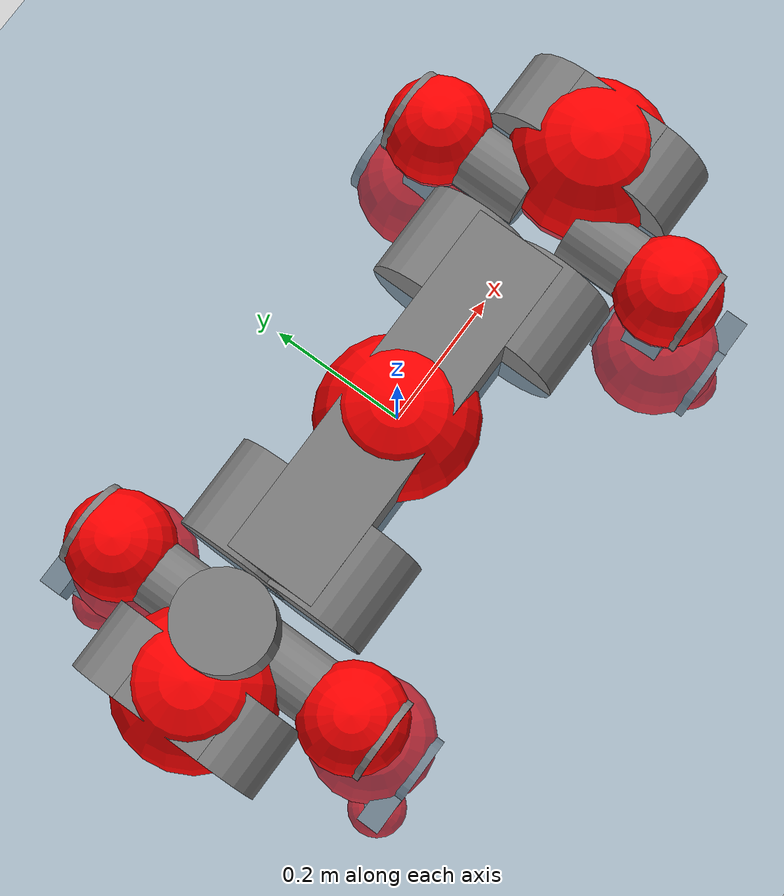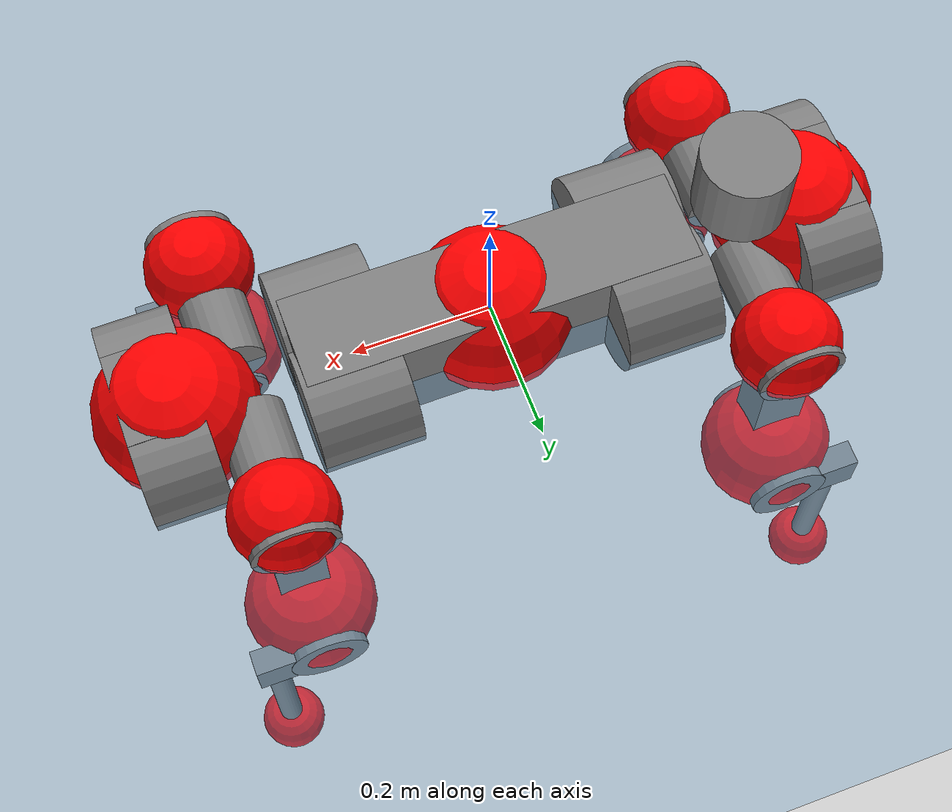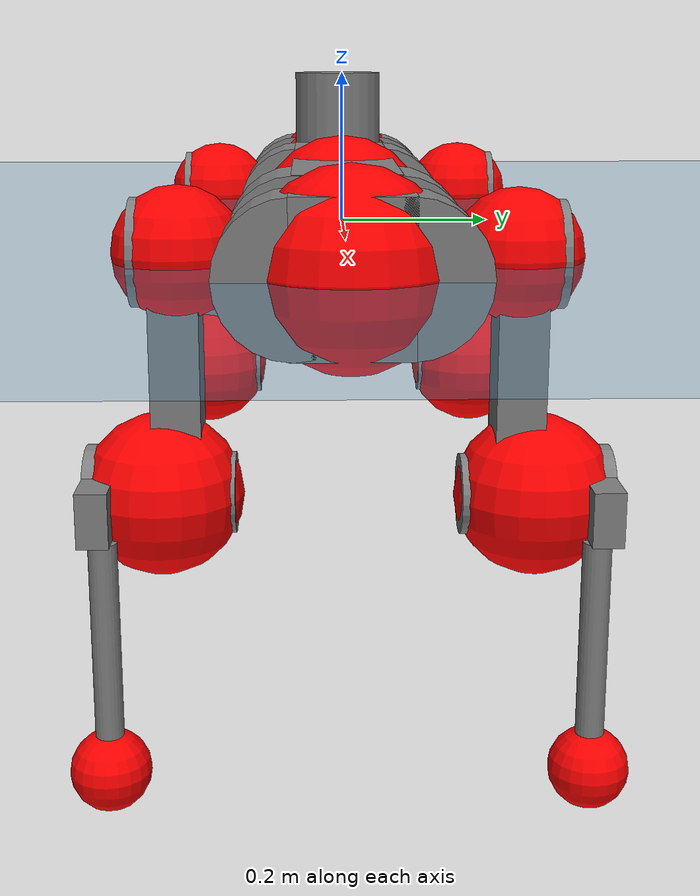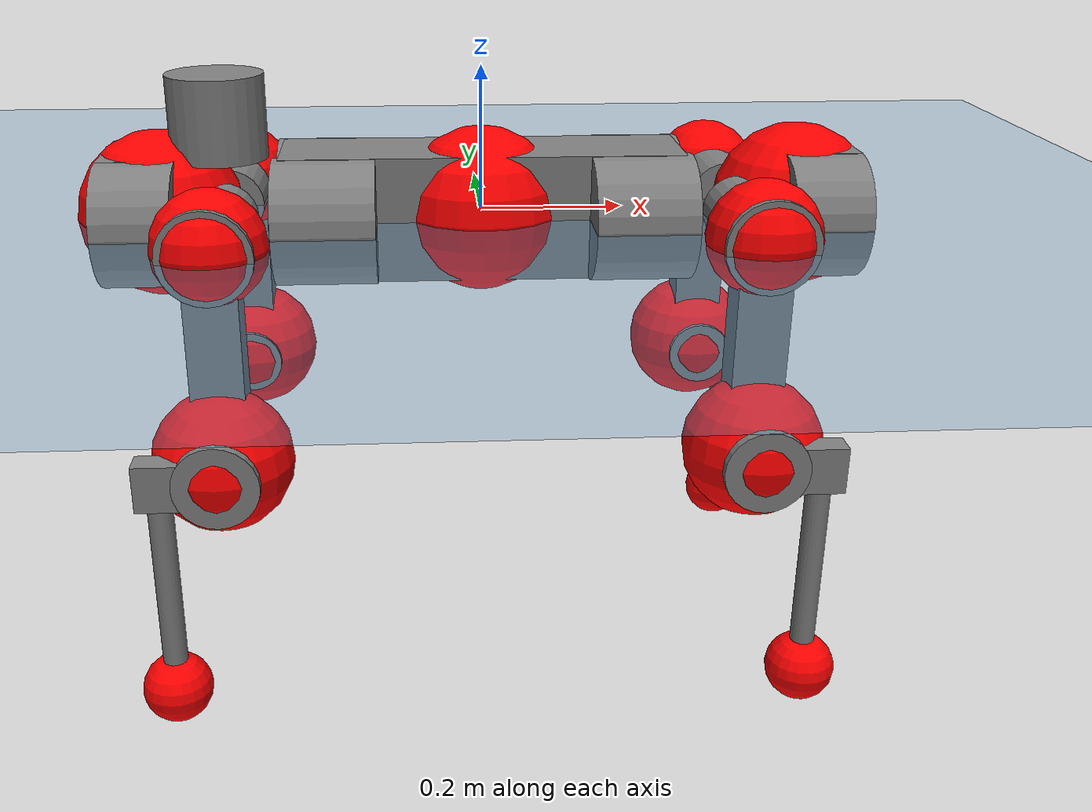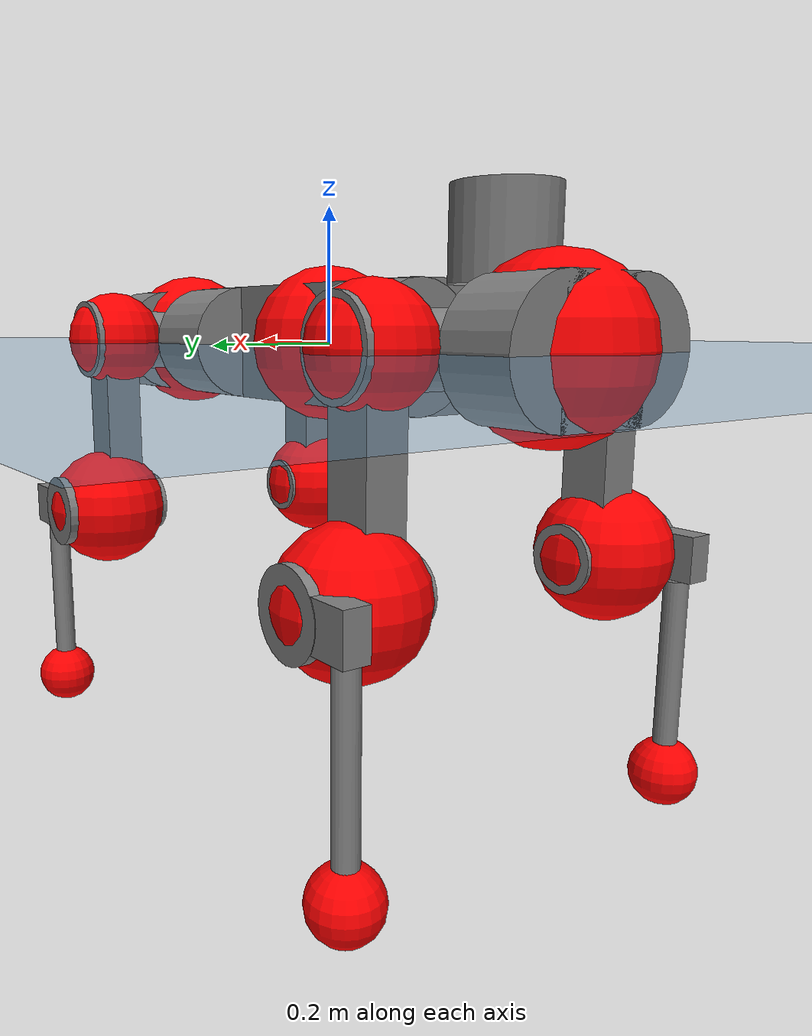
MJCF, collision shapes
<mujoco model="anymal_c">
  <compiler angle="radian" assetdir="assets" balanceinertia="true" inertiafromgeom="false"/>

  <option timestep="0.005" density="1.2" viscosity="2e-05"/>

  <size nkey="1"/>

  <visual>
    <quality shadowsize="8192"/>
    <map shadowclip="0.5"/>
  </visual>

  <default>
    <default class="/">
      <material specular="0" shininess="0.25"/>
      <geom contype="0" conaffinity="0" group="1" solref="-1000 -80"/>
      <site size="0.01 0.005 0.005" group="5"/>
      <general forcelimited="true" forcerange="-80 80" biastype="affine" gainprm="80" biasprm="0 -80 -2"/>
      <default class="anymal_c">
        <joint armature="0.01" damping="0.01" frictionloss="0.1"/>
        <default class="visual">
          <geom type="mesh" group="2"/>
          <default class="visual_zflip"/>
        </default>
        <default class="collision">
          <geom type="cylinder" group="3"/>
          <default class="foot">
            <geom size="0.03 0 0" type="sphere" condim="6" priority="1" friction="0.8 0.02 0.01" solimp="0.015 1 0.03"/>
          </default>
        </default>
      </default>
      <default class="reward_collision_sphere">
        <geom group="5" rgba="1 0 0 1"/>
      </default>
    </default>
  </default>

  <asset>
    <texture type="skybox" colorspace="auto" name="//unnamed_texture_0" builtin="gradient" rgb1="0.95 0.95 0.95" rgb2="0.95 0.95 0.95" width="100" height="600"/>
    <texture type="2d" colorspace="auto" name="texplane" builtin="checker" rgb1="0.345 0.575 0.748" rgb2="0.345 0.575 0.748" markrgb="1 1 1" width="512" height="512"/>
    <texture type="2d" colorspace="linear" name="base" file="base.png"/>
    <texture type="2d" colorspace="linear" name="top_shell" file="top_shell.png"/>
    <texture type="2d" colorspace="linear" name="bottom_shell" file="bottom_shell.png"/>
    <texture type="2d" colorspace="linear" name="remote" file="remote.png"/>
    <texture type="2d" colorspace="linear" name="hatch" file="hatch.png"/>
    <texture type="2d" colorspace="linear" name="handle" file="handle.png"/>
    <texture type="2d" colorspace="linear" name="face" file="face.png"/>
    <texture type="2d" colorspace="linear" name="battery" file="battery.png"/>
    <texture type="2d" colorspace="linear" name="lidar_cage" file="lidar_cage.png"/>
    <texture type="2d" colorspace="linear" name="depth_camera" file="depth_camera.png"/>
    <texture type="2d" colorspace="linear" name="wide_angle_camera" file="wide_angle_camera.png"/>
    <texture type="2d" colorspace="linear" name="lidar" file="lidar.png"/>
    <texture type="2d" colorspace="linear" name="drive" file="drive.png"/>
    <texture type="2d" colorspace="linear" name="hip_l" file="hip_l.png"/>
    <texture type="2d" colorspace="linear" name="shank_l" file="shank_l.png"/>
    <texture type="2d" colorspace="linear" name="foot" file="foot.png"/>
    <texture type="2d" colorspace="linear" name="thigh" file="thigh.png"/>
    <texture type="2d" colorspace="linear" name="shank_r" file="shank_r.png"/>
    <texture type="2d" colorspace="linear" name="hip_r" file="hip_r.png"/>
    <material name="MatPlane" class="/" texture="texplane" texuniform="true" texrepeat="2 2" specular="0.9" shininess="0.5"/>
    <material name="black_plastic" class="/" rgba="0.007 0.007 0.007 1"/>
    <material name="green" class="/" rgba="0.052 0.178 0.033 1"/>
    <material name="red" class="/" rgba="0.178 0.006 0.005 1"/>
    <material name="yellow" class="/" rgba="0.178 0.119 0.006 1"/>
    <material name="lwl" class="/" rgba="0.8 0.8 0.8 1"/>
    <material name="base" class="/" texture="base"/>
    <material name="top_shell" class="/" texture="top_shell"/>
    <material name="bottom_shell" class="/" texture="bottom_shell"/>
    <material name="hip_l" class="/" texture="hip_l"/>
    <material name="thigh" class="/" texture="thigh"/>
    <material name="shank_l" class="/" texture="shank_l"/>
    <material name="foot" class="/" texture="foot"/>
    <material name="hip_r" class="/" texture="hip_r"/>
    <material name="shank" class="/" texture="shank_r"/>
    <material name="hatch" class="/" texture="hatch"/>
    <material name="remote" class="/" texture="remote"/>
    <material name="handle" class="/" texture="handle"/>
    <material name="face" class="/" texture="face"/>
    <material name="depth_camera" class="/" texture="depth_camera"/>
    <material name="wide_angle_camera" class="/" texture="wide_angle_camera"/>
    <material name="battery" class="/" texture="battery"/>
    <material name="lidar_cage" class="/" texture="lidar_cage"/>
    <material name="lidar" class="/" texture="lidar"/>
    <material name="drive" class="/" texture="drive"/>
    <mesh name="base_0" class="/" file="base_0.obj"/>
    <mesh name="base_1" class="/" file="base_1.obj"/>
    <mesh name="base_2" class="/" file="base_2.obj"/>
    <mesh name="base_3" class="/" file="base_3.obj"/>
    <mesh name="base_4" class="/" file="base_4.obj"/>
    <mesh name="base_5" class="/" file="base_5.obj"/>
    <mesh name="top_shell" class="/" file="top_shell.obj"/>
    <mesh name="bottom_shell" class="/" file="bottom_shell.obj"/>
    <mesh name="remote" class="/" file="remote.obj"/>
    <mesh name="handle" class="/" file="handle.obj"/>
    <mesh name="face" class="/" file="face.obj"/>
    <mesh name="wide_angle_camera" class="/" file="wide_angle_camera.obj"/>
    <mesh name="depth_camera" class="/" file="depth_camera.obj"/>
    <mesh name="battery" class="/" file="battery.obj"/>
    <mesh name="lidar_cage" class="/" file="lidar_cage.obj"/>
    <mesh name="lidar" class="/" file="lidar.obj"/>
    <mesh name="drive" class="/" file="drive.obj"/>
    <mesh name="hip_l" class="/" file="hip_l.obj"/>
    <mesh name="thigh" class="/" file="thigh.obj"/>
    <mesh name="shank_l" class="/" file="shank_l.obj"/>
    <mesh name="foot" class="/" file="foot.obj"/>
    <mesh name="hip_r" class="/" file="hip_r.obj"/>
    <mesh name="hatch" class="/" file="hatch.obj"/>
    <mesh name="shank_r" class="/" file="shank_r.obj"/>
  </asset>

  <worldbody>
    <geom name="floor" class="/" size="100 100 0.125" type="plane" group="0" material="MatPlane"/>
    <light name="toplight_shadow" class="/" pos="0 0 5" dir="0.0990148 0.0990148 -0.990148" type="directional" ambient="0.04 0.04 0.04" diffuse="0.55 0.55 0.55" specular="0.12 0.12 0.12"/>
    <light name="toplight_fill" class="/" pos="0 0 5" dir="0.0990148 0.0990148 -0.990148" type="directional" castshadow="false" ambient="0.04 0.04 0.04" diffuse="0.3 0.3 0.3" specular="0.08 0.08 0.08"/>
    <body name="trunk" childclass="anymal_c" pos="4.65187e-05 0.000510871 0.00091979" quat="1 3.51677e-06 0.000228842 5.57397e-05">
      <inertial pos="0.00317986 -0.000881363 0.0495901" quat="0.498111 0.502725 0.499029 0.500123" mass="17.1933" diaginertia="0.654376 0.341556 0.231705"/>
      <joint name="//unnamed_joint_0" type="free" armature="0" damping="0" frictionloss="0"/>
      <geom name="//unnamed_geom_1" class="visual" material="green" mesh="base_0"/>
      <geom name="//unnamed_geom_2" class="visual" material="yellow" mesh="base_1"/>
      <geom name="//unnamed_geom_3" class="visual" material="red" mesh="base_2"/>
      <geom name="//unnamed_geom_4" class="visual" material="black_plastic" mesh="base_3"/>
      <geom name="//unnamed_geom_5" class="visual" material="lwl" mesh="base_4"/>
      <geom name="//unnamed_geom_6" class="visual" material="base" mesh="base_5"/>
      <geom name="trunk_1" class="collision" size="0.279272 0.0674105 0.0866707" type="box"/>
      <geom name="trunk_2" class="collision" size="0.0866707 0.069818" pos="0.217255 0.0618536 0" quat="0.707107 0 0.707107 0"/>
      <geom name="trunk_3" class="collision" size="0.0866707 0.069818" pos="-0.217255 0.0618536 0" quat="0.707107 0 0.707107 0"/>
      <geom name="trunk_4" class="collision" size="0.0866707 0.069818" pos="0.217255 -0.0618536 0" quat="0.707107 0 0.707107 0"/>
      <geom name="trunk_5" class="collision" size="0.0866707 0.069818" pos="-0.217255 -0.0618536 0" quat="0.707107 0 0.707107 0"/>
      <geom name="//unnamed_geom_12" class="visual" material="top_shell" mesh="top_shell"/>
      <geom name="//unnamed_geom_13" class="visual" material="bottom_shell" mesh="bottom_shell"/>
      <geom name="//unnamed_geom_14" class="visual" material="remote" mesh="remote"/>
      <geom name="//unnamed_geom_15" class="visual" material="handle" mesh="handle"/>
      <geom name="//unnamed_geom_16" class="visual" pos="0.414032 0 0" quat="1 0 0 0" material="face" mesh="face"/>
      <geom name="trunk_6" class="collision" size="0.0529654 0.0674105 0.0866707" pos="0.46897 0 0" type="box"/>
      <geom name="//unnamed_geom_18" class="collision" size="0.0866707 0.0529654" pos="0.46897 0.0618536 0" quat="0.707107 0 0.707107 0"/>
      <geom name="//unnamed_geom_19" class="collision" size="0.0866707 0.0529654" pos="0.46897 -0.0618536 0" quat="0.707107 0 0.707107 0"/>
      <geom name="//unnamed_geom_20" class="visual" pos="0.46113 0 -0.0294488" quat="0.965926 0 0.258819 0" material="depth_camera" mesh="depth_camera"/>
      <geom name="//unnamed_geom_21" class="visual" pos="0.512421 0 0.0150677" material="wide_angle_camera" mesh="wide_angle_camera"/>
      <geom name="//unnamed_geom_22" class="visual_zflip" pos="-0.414032 0 0" quat="0 0 0 1" material="face" mesh="face"/>
      <geom name="trunk_7" class="collision" size="0.0529654 0.0674105 0.0866707" pos="-0.46897 0 0" quat="0 0 0 1" type="box"/>
      <geom name="//unnamed_geom_24" class="collision" size="0.0866707 0.0529654" pos="-0.46897 -0.0618536 0" quat="0 -0.707107 0 0.707107"/>
      <geom name="//unnamed_geom_25" class="collision" size="0.0866707 0.0529654" pos="-0.46897 0.0618536 0" quat="0 -0.707107 0 0.707107"/>
      <geom name="//unnamed_geom_26" class="visual" pos="-0.46113 0 -0.0294488" quat="0 -0.258819 0 0.965926" material="depth_camera" mesh="depth_camera"/>
      <geom name="//unnamed_geom_27" class="visual_zflip" pos="-0.512421 0 0.0150677" quat="0 0 0 1" material="wide_angle_camera" mesh="wide_angle_camera"/>
      <geom name="//unnamed_geom_28" class="visual" material="battery" mesh="battery"/>
      <geom name="//unnamed_geom_29" class="visual" pos="0 0.0660498 0.0291814" quat="0.683013 -0.183013 0.183013 0.683013" material="depth_camera" mesh="depth_camera"/>
      <geom name="//unnamed_geom_30" class="visual" pos="0 -0.0660498 0.0291814" quat="0.683013 0.183013 0.183013 -0.683013" material="depth_camera" mesh="depth_camera"/>
      <geom name="//unnamed_geom_31" class="visual" pos="-0.363589 0 0.0739797" quat="1 0 0 0" material="lidar_cage" mesh="lidar_cage"/>
      <geom name="trunk_8" class="collision" size="0.0674105 0.0577804" pos="-0.363589 0 0.134371"/>
      <geom name="//unnamed_geom_33" class="visual" pos="-0.363589 -4.52783e-05 0.143128" quat="0.707107 0 0 -0.707107" material="lidar" mesh="lidar"/>
      <geom name="//unnamed_geom_34" class="visual" pos="0.299562 0.0919404 -2.12012e-09" quat="0.258819 0.965926 0 0" material="drive" mesh="drive"/>
      <geom name="//unnamed_geom_35" class="visual" pos="0.299562 -0.0919404 2.12012e-09" quat="0.258819 -0.965926 0 0" material="drive" mesh="drive"/>
      <geom name="//unnamed_geom_36" class="visual" pos="-0.299562 0.0919404 2.12012e-09" quat="0 0 0.965926 -0.258819" material="drive" mesh="drive"/>
      <geom name="//unnamed_geom_37" class="visual" pos="-0.299562 -0.0919404 -2.12012e-09" quat="0 0 -0.965926 -0.258819" material="drive" mesh="drive"/>
      <geom name="//unnamed_geom_38" class="visual" pos="0.115869 0 0.0734765" quat="1 0 0 0" material="hatch" mesh="hatch"/>
      <geom name="//unnamed_geom_39" class="reward_collision_sphere" size="0.115561"/>
      <geom name="//unnamed_geom_40" class="reward_collision_sphere" size="0.115561" pos="0.449492 0 0"/>
      <geom name="//unnamed_geom_41" class="reward_collision_sphere" size="0.115561" pos="-0.449492 0 0"/>
      <site name="imu" pos="0.244581 -0.00261102 0.0508794" size="0.00963007"/>
      <camera name="track" pos="0 -1.76725 0" quat="0.707107 0.707107 0 0" mode="trackcom"/>
      <camera name="ego_camera" pos="0.449492 0 -0.0402611" quat="-0.5 -0.5 0.5 0.5"/>
      <body name="LF_HIP" pos="0.299717 0.0917819 0.00081407" quat="0.258836 0.965921 -0.000472268 0.00081627">
        <inertial pos="0.0575565 -0.0130076 -0.00783714" quat="-0.127804 0.709938 -0.135308 0.679225" mass="2.52642" diaginertia="0.00592585 0.00270457 0.00342247"/>
        <joint name="LF_HAA" pos="0 0 0" axis="1 0.000727597 0.000116833" range="-0.692095 0.485719" armature="0.00974273" damping="0.0125043" frictionloss="0.0939931"/>
        <geom name="//unnamed_geom_42" class="visual" pos="0 -0.000124717 2.04846e-05" quat="0.258819 -0.965926 0 0" material="hip_l" mesh="hip_l"/>
        <geom name="//unnamed_geom_43" class="visual" pos="0.0598324 -0.071026 -0.0419159" quat="0.183013 -0.683013 0.683013 0.183013" material="drive" mesh="drive"/>
        <geom name="//unnamed_geom_44" class="collision" size="0.0481504 0.0674105" pos="0.0598324 -0.010568 -0.00695007" quat="-0.353553 -0.612372 0.612372 -0.353553"/>
        <body name="LF_THIGH" pos="0.0602598 -0.0647846 -0.0406069" quat="0.183003 -0.683058 0.682985 0.182957">
          <inertial pos="0.0312774 -0.00131867 -0.249244" quat="0.993284 -0.00345925 -0.0788464 0.084607" mass="2.72617" diaginertia="0.0301738 0.0162405 0.00432908"/>
          <joint name="LF_HFE" pos="0 0 0" axis="0.999999 0.00103467 0.000474785" range="-3.1463 3.17456" armature="0.00999297" damping="0" frictionloss="0.0963622"/>
          <geom name="//unnamed_geom_45" class="visual" pos="0.00229301 3.61324e-06 0" quat="0.707107 0 0 -0.707107" material="thigh" mesh="thigh"/>
          <geom name="//unnamed_geom_46" class="collision" size="0.0625955 0.0385203" pos="0.0399549 0 0" quat="0.5 0.5 -0.5 -0.5"/>
          <geom name="//unnamed_geom_47" class="collision" size="0.0361128 0.0288902 0.136086" pos="0.0299662 0 -0.142236" quat="0.707107 0 0 -0.707107" type="box"/>
          <geom name="//unnamed_geom_48" class="visual" pos="0.100187 0 -0.28686" quat="1 0 0 0" material="drive" mesh="drive"/>
          <geom name="//unnamed_geom_49" class="collision" size="0.0481504 0.0674105" pos="0.0302658 0 -0.28686" quat="0.707107 0 0.707107 0"/>
          <geom name="//unnamed_geom_50" class="reward_collision_sphere" size="0.0770406" pos="0.0249718 0 0"/>
          <body name="LF_SHANK" pos="0.102248 0.00131378 -0.286875" quat="1 -5.70544e-07 -6.88732e-07 -5.97956e-07">
            <inertial pos="0.00586461 -0.0533159 -0.0814499" quat="0.992928 -0.115999 -0.000908668 -0.0252366" mass="0.532546" diaginertia="0.0100482 0.00496252 0.00115086"/>
            <joint name="LF_KFE" pos="0 0 0" axis="1 -1.75144e-05 3.63362e-05" range="-3.14712 3.11796" armature="0.00951977" damping="0.00978424" frictionloss="0.093721"/>
            <geom name="//unnamed_geom_51" class="visual" pos="0.000747699 0.00398677 0" quat="0.707107 0 0 -0.707107" material="shank_l" mesh="shank_l"/>
            <geom name="LF_kfe_act" class="collision" size="0.0577804 0.0192601" pos="0.0199774 0 0" quat="0.5 0.5 -0.5 -0.5"/>
            <geom name="//unnamed_geom_53" class="collision" size="0.055372 0.0325015 0.0182971" pos="0.0199774 -0.0508074 0" quat="0.5 0.5 -0.5 -0.5" type="box"/>
            <geom name="//unnamed_geom_54" class="visual" pos="0.0130351 -0.0764298 -0.340176" quat="0.382683 0 0 -0.92388" material="foot" mesh="foot"/>
            <geom name="LF_calf" class="collision" size="0.0168526 0.136027" pos="0.0130353 -0.0777146 -0.170088" quat="0.707107 0 0 -0.707107"/>
            <geom name="LF_foot" class="foot" size="0.02797" pos="0.0130353 -0.0777146 -0.317529" quat="0.707107 0 0 -0.707107"/>
            <geom name="//unnamed_geom_57" class="reward_collision_sphere" size="0.0963007" pos="-0.0499436 0 0"/>
            <geom name="//unnamed_geom_58" class="reward_collision_sphere" size="0.0481504" pos="0.0130353 -0.0777146 -0.317529"/>
            <site name="LF_foot" class="foot" pos="0.0130353 -0.0777146 -0.317529" quat="0.707107 0 0 -0.707107" size="0.00963007"/>
          </body>
        </body>
      </body>
      <body name="RF_HIP" pos="0.299255 -0.0935019 0.00160942" quat="0.258792 -0.965933 1.01694e-05 1.34682e-06">
        <inertial pos="0.0569788 0.0142753 -0.00870357" quat="0.1412 0.678266 0.131505 0.70903" mass="2.53102" diaginertia="0.00600602 0.00266962 0.00347921"/>
        <joint name="RF_HAA" pos="0 0 0" axis="0.999998 -0.00167172 0.00115448" range="-0.491797 0.720948" armature="0.00957826" damping="0.0100076" frictionloss="0.0926139"/>
        <geom name="//unnamed_geom_59" class="visual" pos="0 0.000124716 2.04846e-05" quat="0.258819 0.965926 0 0" material="hip_r" mesh="hip_r"/>
        <geom name="//unnamed_geom_60" class="visual" pos="0.0598324 0.071026 -0.0419159" quat="0.183013 0.683013 0.683013 -0.183013" material="drive" mesh="drive"/>
        <geom name="//unnamed_geom_61" class="collision" size="0.0481504 0.0674105" pos="0.0598324 0.010568 -0.00695007" quat="-0.353553 0.612372 0.612372 0.353553"/>
        <body name="RF_THIGH" pos="0.0592395 0.0636716 -0.0428117" quat="0.183 0.682957 0.683095 -0.182927">
          <inertial pos="0.0310332 -2.05817e-06 -0.248654" quat="0.992627 -0.00934408 -0.0741319 0.095436" mass="2.77314" diaginertia="0.0309896 0.0164239 0.00440921"/>
          <joint name="RF_HFE" pos="0 0 0" axis="0.999998 -0.000671402 0.00167124" stiffness="0.00486157" range="-3.17306 3.14955" armature="0.00942045" damping="0.00927755" frictionloss="0.0963255"/>
          <geom name="//unnamed_geom_62" class="visual" pos="0.00229301 3.61324e-06 0" quat="0.707107 0 0 -0.707107" material="thigh" mesh="thigh"/>
          <geom name="//unnamed_geom_63" class="collision" size="0.0625955 0.0385203" pos="0.0399549 0 0" quat="0.5 0.5 0.5 0.5"/>
          <geom name="//unnamed_geom_64" class="collision" size="0.0361128 0.0288902 0.136086" pos="0.0299662 0 -0.142236" quat="0.707107 0 0 0.707107" type="box"/>
          <geom name="//unnamed_geom_65" class="visual" pos="0.100187 0 -0.28686" quat="1 0 0 0" material="drive" mesh="drive"/>
          <geom name="//unnamed_geom_66" class="collision" size="0.0481504 0.0674105" pos="0.0302658 0 -0.28686" quat="0.707107 0 0.707107 0"/>
          <geom name="//unnamed_geom_67" class="reward_collision_sphere" size="0.0770406" pos="0.0249718 0 0"/>
          <body name="RF_SHANK" pos="0.0997785 0.000786096 -0.28682" quat="1 -7.25555e-07 -3.00655e-07 -6.25584e-07">
            <inertial pos="0.00572323 0.0538734 -0.0789102" quat="0.993188 0.113162 0.00100636 0.0277497" mass="0.50974" diaginertia="0.00972415 0.00496546 0.00110846"/>
            <joint name="RF_KFE" pos="0 0 0" axis="0.999999 0.00139929 0.000686751" range="-3.12849 3.15389" armature="0.00967996" damping="0.00818557" frictionloss="0.096387"/>
            <geom name="//unnamed_geom_68" class="visual" pos="0.000747695 -0.00398676 0" quat="0.707107 0 0 0.707107" material="shank" mesh="shank_r"/>
            <geom name="RF_kfe_act" class="collision" size="0.0577804 0.0192601" pos="0.0199774 0 0" quat="0.5 0.5 0.5 0.5"/>
            <geom name="//unnamed_geom_70" class="collision" size="0.055372 0.0325015 0.0182971" pos="0.0199774 0.0508074 0" quat="0.5 0.5 0.5 0.5" type="box"/>
            <geom name="//unnamed_geom_71" class="visual" pos="0.0130355 0.0764298 -0.340176" quat="0.382683 0 0 0.92388" material="foot" mesh="foot"/>
            <geom name="RF_calf" class="collision" size="0.0168526 0.136027" pos="0.0130353 0.0777146 -0.170088" quat="0.707107 0 0 0.707107"/>
            <geom name="RF_foot" class="foot" size="0.0286073" pos="0.0130353 0.0777146 -0.317529" quat="0.707107 0 0 0.707107"/>
            <geom name="//unnamed_geom_74" class="reward_collision_sphere" size="0.0963007" pos="-0.0499436 0 0"/>
            <geom name="//unnamed_geom_75" class="reward_collision_sphere" size="0.0481504" pos="0.0130353 0.0777146 -0.317529"/>
            <site name="RF_foot" class="foot" pos="0.0130353 0.0777146 -0.317529" quat="0.707107 0 0 0.707107" size="0.00963007"/>
          </body>
        </body>
      </body>
      <body name="LH_HIP" pos="-0.299581 0.0929345 -0.000764655" quat="0.000110803 -0.000129794 0.965956 -0.258705">
        <inertial pos="0.0566809 0.0129411 -0.00969953" quat="0.134935 0.681012 0.127735 0.708307" mass="2.50663" diaginertia="0.00585558 0.00264203 0.00338854"/>
        <joint name="LH_HAA" pos="0 0 0" axis="0.999999 1.93507e-05 0.00123757" stiffness="0.000639434" range="-0.456984 0.748439" armature="0.00958252" damping="0.0113353" frictionloss="0.102318"/>
        <geom name="//unnamed_geom_76" class="visual" pos="0 0.000124716 2.04846e-05" quat="-0.258819 -0.965926 0 0" material="hip_r" mesh="hip_r"/>
        <geom name="//unnamed_geom_77" class="visual" pos="0.0598324 0.071026 -0.0419159" quat="0.183013 0.683013 0.683013 -0.183013" material="drive" mesh="drive"/>
        <geom name="//unnamed_geom_78" class="collision" size="0.0481504 0.0674105" pos="0.0598324 0.010568 -0.00695007" quat="-0.353553 0.612372 0.612372 0.353553"/>
        <body name="LH_THIGH" pos="0.0590349 0.0640181 -0.0422538" quat="0.183055 0.683001 0.682998 -0.18307">
          <inertial pos="0.0297544 0.000405109 -0.249043" quat="0.992851 -0.00216115 -0.076486 0.0916049" mass="2.69846" diaginertia="0.0291419 0.0158412 0.0041996"/>
          <joint name="LH_HFE" pos="0 0 0" axis="0.999978 -0.00326251 -0.00572671" stiffness="0.0027517" range="-3.16726 3.13779" armature="0.00920848" damping="0.00476072" frictionloss="0.0974499"/>
          <geom name="//unnamed_geom_79" class="visual" pos="0.00229301 3.61324e-06 0" quat="0.707107 0 0 -0.707107" material="thigh" mesh="thigh"/>
          <geom name="//unnamed_geom_80" class="collision" size="0.0625955 0.0385203" pos="0.0399549 0 0" quat="0.5 0.5 -0.5 -0.5"/>
          <geom name="//unnamed_geom_81" class="collision" size="0.0361128 0.0288902 0.136086" pos="0.0299662 0 -0.142236" quat="0.707107 0 0 -0.707107" type="box"/>
          <geom name="//unnamed_geom_82" class="visual" pos="0.100187 0 -0.28686" quat="1 0 0 0" material="drive" mesh="drive"/>
          <geom name="//unnamed_geom_83" class="collision" size="0.0481504 0.0674105" pos="0.0302658 0 -0.28686" quat="0.707107 0 0.707107 0"/>
          <geom name="//unnamed_geom_84" class="reward_collision_sphere" size="0.0770406" pos="0.0249718 0 0"/>
          <body name="LH_SHANK" pos="0.10074 -0.00154021 -0.287481" quat="1 0.000271705 0.0001137 9.60678e-05">
            <inertial pos="0.00469799 0.0546289 -0.0814935" quat="0.992992 0.115355 0.00145092 0.0256474" mass="0.52576" diaginertia="0.0101238 0.0049294 0.00117086"/>
            <joint name="LH_KFE" pos="0 0 0" axis="1 6.28631e-05 -0.00027015" range="-3.15692 3.14085" armature="0.00997963" damping="0.0113239" frictionloss="0.0929992"/>
            <geom name="//unnamed_geom_85" class="visual" pos="0.000747695 -0.00398676 0" quat="-0.707107 0 0 -0.707107" material="shank" mesh="shank_r"/>
            <geom name="LH_kfe_act" class="collision" size="0.0577804 0.0192601" pos="0.0199774 0 0" quat="0.5 0.5 -0.5 -0.5"/>
            <geom name="//unnamed_geom_87" class="collision" size="0.055372 0.0325015 0.0182971" pos="0.0199774 0.0508074 0" quat="0.5 0.5 -0.5 -0.5" type="box"/>
            <geom name="//unnamed_geom_88" class="visual" pos="0.0130355 0.0764298 -0.340176" quat="-0.382683 0 0 -0.92388" material="foot" mesh="foot"/>
            <geom name="LH_calf" class="collision" size="0.0168526 0.136027" pos="0.0130353 0.0777146 -0.170088" quat="0.707107 0 0 -0.707107"/>
            <geom name="LH_foot" class="foot" size="0.0311096" pos="0.0130353 0.0777146 -0.317529" quat="0.707107 0 0 -0.707107"/>
            <geom name="//unnamed_geom_91" class="reward_collision_sphere" size="0.0963007" pos="-0.0499436 0 0"/>
            <geom name="//unnamed_geom_92" class="reward_collision_sphere" size="0.0481504" pos="0.0130353 0.0777146 -0.317529"/>
            <site name="LH_foot" class="foot" pos="0.0130353 0.0777146 -0.317529" quat="0.707107 0 0 -0.707107" size="0.00963007"/>
          </body>
        </body>
      </body>
      <body name="RH_HIP" pos="-0.299513 -0.0906583 -2.29217e-05" quat="-3.39922e-05 -0.000247863 -0.965817 -0.259226">
        <inertial pos="0.0563095 -0.0124978 -0.00854469" quat="-0.127764 0.709988 -0.135099 0.679221" mass="2.39654" diaginertia="0.00566291 0.00258131 0.00332583"/>
        <joint name="RH_HAA" pos="0 0 0" axis="0.999993 0.00289091 -0.00221034" range="-0.738927 0.481723" armature="0.010007" damping="0.00479808" frictionloss="0.0922254"/>
        <geom name="//unnamed_geom_93" class="visual" pos="0 -0.000124717 2.04846e-05" quat="-0.258819 0.965926 0 0" material="hip_l" mesh="hip_l"/>
        <geom name="//unnamed_geom_94" class="visual" pos="0.0598324 -0.071026 -0.0419159" quat="-0.183013 0.683013 -0.683013 -0.183013" material="drive" mesh="drive"/>
        <geom name="//unnamed_geom_95" class="collision" size="0.0481504 0.0674105" pos="0.0598324 -0.010568 -0.00695007" quat="0.353553 0.612372 -0.612372 0.353553"/>
        <body name="RH_THIGH" pos="0.0597677 -0.0640045 -0.0409301" quat="-0.182981 0.682982 -0.683049 -0.183024">
          <inertial pos="0.031642 -0.000129813 -0.247033" quat="0.993217 -0.00568339 -0.0803237 0.0838779" mass="2.69859" diaginertia="0.0294645 0.0158856 0.00431803"/>
          <joint name="RH_HFE" pos="0 0 0" axis="0.999979 -0.00256716 0.00586713" range="-3.17061 3.16972" armature="0.00945635" damping="0.00733342" frictionloss="0.0929712"/>
          <geom name="//unnamed_geom_96" class="visual" pos="0.00229301 3.61324e-06 0" quat="0.707107 0 0 -0.707107" material="thigh" mesh="thigh"/>
          <geom name="//unnamed_geom_97" class="collision" size="0.0625955 0.0385203" pos="0.0399549 0 0" quat="0.5 0.5 0.5 0.5"/>
          <geom name="//unnamed_geom_98" class="collision" size="0.0361128 0.0288902 0.136086" pos="0.0299662 0 -0.142236" quat="0.707107 0 0 0.707107" type="box"/>
          <geom name="//unnamed_geom_99" class="visual" pos="0.100187 0 -0.28686" quat="1 0 0 0" material="drive" mesh="drive"/>
          <geom name="//unnamed_geom_100" class="collision" size="0.0481504 0.0674105" pos="0.0302658 0 -0.28686" quat="0.707107 0 0.707107 0"/>
          <geom name="//unnamed_geom_101" class="reward_collision_sphere" size="0.0770406" pos="0.0249718 0 0"/>
          <body name="RH_SHANK" pos="0.101241 0.000244709 -0.287452" quat="1 -2.40901e-05 6.0179e-05 -5.93967e-05">
            <inertial pos="0.00469974 -0.0540799 -0.0813681" quat="0.992761 -0.117164 -0.00291037 -0.026281" mass="0.5261" diaginertia="0.0101329 0.00497297 0.00116186"/>
            <joint name="RH_KFE" pos="0 0 0" axis="0.999952 -0.00718425 0.0066059" range="-3.12926 3.12185" armature="0.0100583" damping="0" frictionloss="0.0974498"/>
            <geom name="//unnamed_geom_102" class="visual" pos="0.000747699 0.00398677 0" quat="0.707107 0 0 -0.707107" material="shank_l" mesh="shank_l"/>
            <geom name="RH_kfe_act" class="collision" size="0.0577804 0.0192601" pos="0.0199774 0 0" quat="0.5 0.5 0.5 0.5"/>
            <geom name="//unnamed_geom_104" class="collision" size="0.055372 0.0325015 0.0182971" pos="0.0199774 -0.0508074 0" quat="0.5 0.5 0.5 0.5" type="box"/>
            <geom name="//unnamed_geom_105" class="visual" pos="0.0130351 -0.0764298 -0.340176" quat="0.382683 0 0 -0.92388" material="foot" mesh="foot"/>
            <geom name="RH_calf" class="collision" size="0.0168526 0.136027" pos="0.0130353 -0.0777146 -0.170088" quat="0.707107 0 0 0.707107"/>
            <geom name="RH_foot" class="foot" size="0.0293191" pos="0.0130353 -0.0777146 -0.317529" quat="0.707107 0 0 0.707107"/>
            <geom name="//unnamed_geom_108" class="reward_collision_sphere" size="0.0963007" pos="-0.0499436 0 0"/>
            <geom name="//unnamed_geom_109" class="reward_collision_sphere" size="0.0481504" pos="0.0130353 -0.0777146 -0.317529"/>
            <site name="RH_foot" class="foot" pos="0.0130353 -0.0777146 -0.317529" quat="0.707107 0 0 0.707107" size="0.00963007"/>
          </body>
        </body>
      </body>
    </body>
  </worldbody>

  <contact>
    <pair class="/" geom1="floor" geom2="LF_foot" name="//unnamed_contact_0"/>
    <pair class="/" geom1="floor" geom2="RF_foot" name="//unnamed_contact_1"/>
    <pair class="/" geom1="floor" geom2="LH_foot" name="//unnamed_contact_2"/>
    <pair class="/" geom1="floor" geom2="RH_foot" name="//unnamed_contact_3"/>
  </contact>

  <actuator>
    <general name="LF_HAA" class="/" joint="LF_HAA" forcerange="-76.8266 76.8266" gainprm="79.4058" biasprm="0 -79.4058 -2.00535"/>
    <general name="LF_HFE" class="/" joint="LF_HFE" forcerange="-80.1024 80.1024" gainprm="79.4058" biasprm="0 -79.4058 -2.00535"/>
    <general name="LF_KFE" class="/" joint="LF_KFE" forcerange="-74.4243 74.4243" gainprm="79.4058" biasprm="0 -79.4058 -2.00535"/>
    <general name="RF_HAA" class="/" joint="RF_HAA" forcerange="-79.4086 79.4086" gainprm="79.4058" biasprm="0 -79.4058 -2.00535"/>
    <general name="RF_HFE" class="/" joint="RF_HFE" forcerange="-77.3351 77.3351" gainprm="79.4058" biasprm="0 -79.4058 -2.00535"/>
    <general name="RF_KFE" class="/" joint="RF_KFE" forcerange="-83.305 83.305" gainprm="79.4058" biasprm="0 -79.4058 -2.00535"/>
    <general name="LH_HAA" class="/" joint="LH_HAA" forcerange="-81.9148 81.9148" gainprm="79.4058" biasprm="0 -79.4058 -2.00535"/>
    <general name="LH_HFE" class="/" joint="LH_HFE" forcerange="-74.9627 74.9627" gainprm="79.4058" biasprm="0 -79.4058 -2.00535"/>
    <general name="LH_KFE" class="/" joint="LH_KFE" forcerange="-79.7973 79.7973" gainprm="79.4058" biasprm="0 -79.4058 -2.00535"/>
    <general name="RH_HAA" class="/" joint="RH_HAA" forcerange="-77.1364 77.1364" gainprm="79.4058" biasprm="0 -79.4058 -2.00535"/>
    <general name="RH_HFE" class="/" joint="RH_HFE" forcerange="-72.0655 72.0655" gainprm="79.4058" biasprm="0 -79.4058 -2.00535"/>
    <general name="RH_KFE" class="/" joint="RH_KFE" forcerange="-75.624 75.624" gainprm="79.4058" biasprm="0 -79.4058 -2.00535"/>
  </actuator>

  <sensor>
    <gyro site="imu" name="imu_angular_velocity"/>
    <velocimeter site="imu" name="imu_linear_velocity"/>
    <framelinvel objtype="site" objname="LF_foot" name="LF_foot_global_linear_velocity"/>
    <framelinvel objtype="site" objname="RF_foot" name="RF_foot_global_linear_velocity"/>
    <framelinvel objtype="site" objname="LH_foot" name="LH_foot_global_linear_velocity"/>
    <framelinvel objtype="site" objname="RH_foot" name="RH_foot_global_linear_velocity"/>
  </sensor>

  <keyframe>
    <key name="home" qpos="0 0 0.55 1 0 0 0 0 0.4 -0.8 0 -0.4 0.8 0 -0.4 0.8 0 0.4 -0.8"/>
  </keyframe>
</mujoco>
